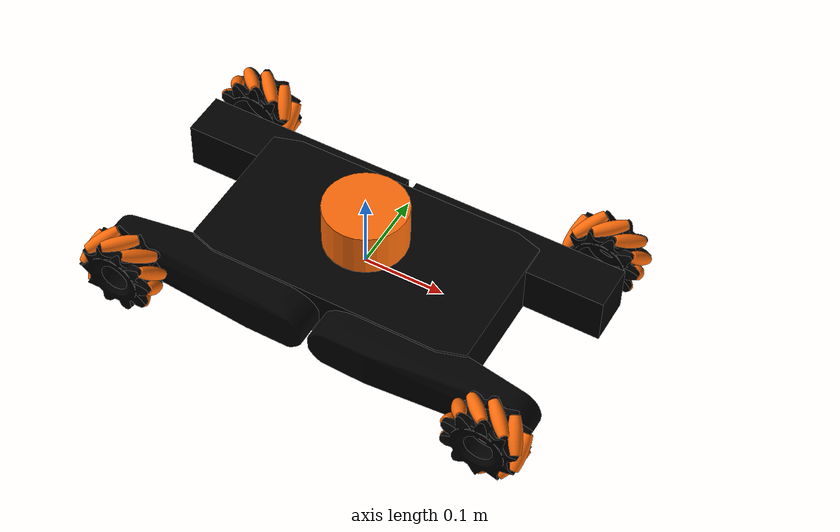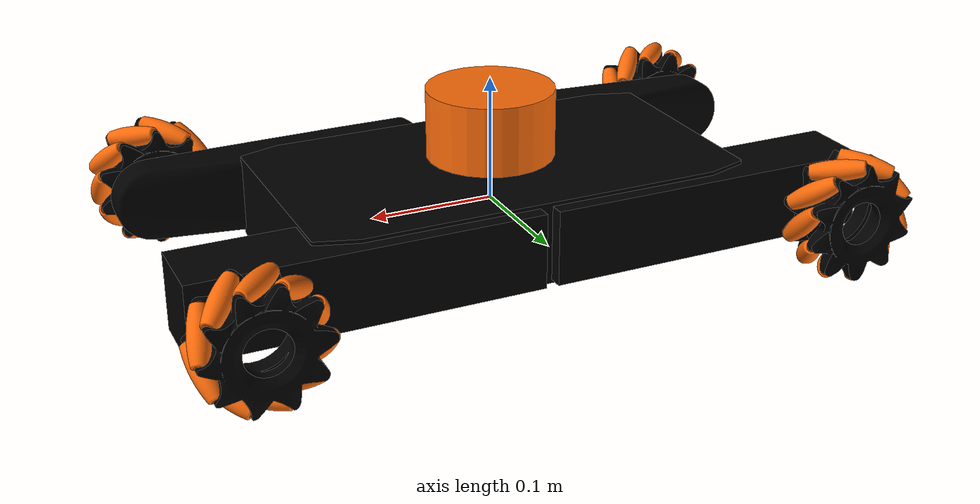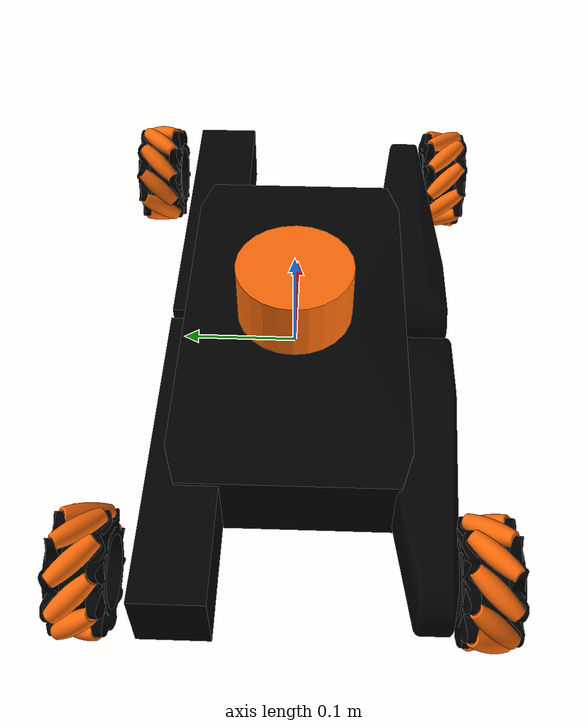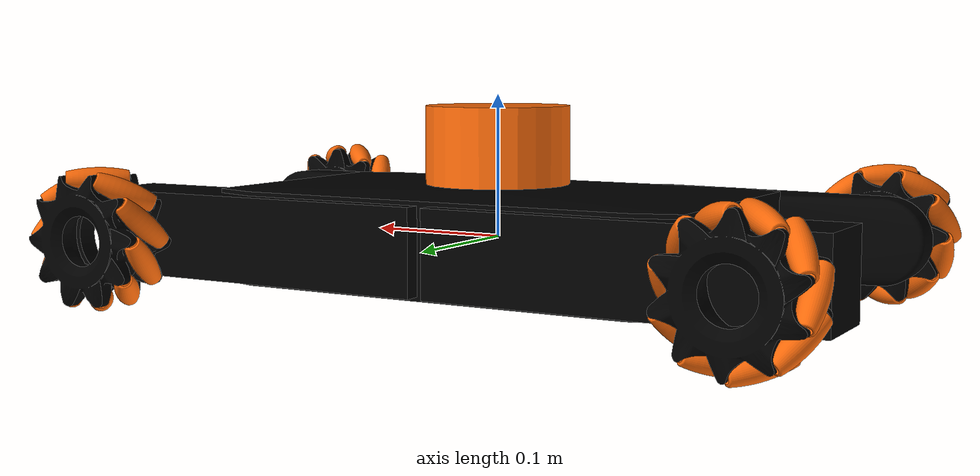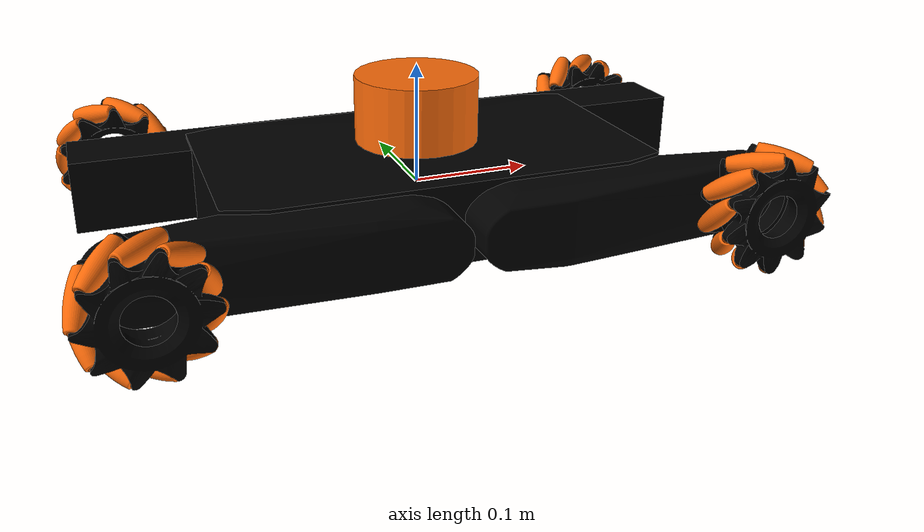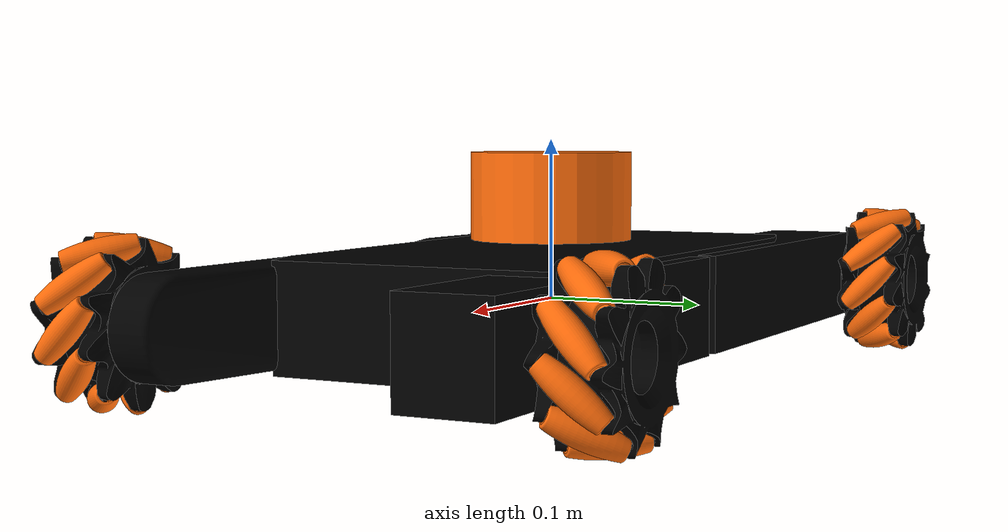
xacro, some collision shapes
<?xml version="1.0"?>
<robot name="mulinex" xmlns:xacro="http://ros.org/wiki/xacro">

    <xacro:include filename="$(find mulinex_description)/urdf/omni_car_module.xacro" />
    <xacro:property name="mulinex_base" value="file://$(find mulinex_description)/meshes//Body.stl" />
    <xacro:include filename="$(find mulinex_description)/urdf/material.xacro" />
    <xacro:include filename="$(find mulinex_description)/urdf/omnicar_ignition.xacro" />
    <xacro:include filename="$(find mulinex_description)/urdf/imu_sensor.xacro" />
    <xacro:include filename="$(find mulinex_description)/urdf/lidar_sensor.xacro" />
    <xacro:include filename="$(find mulinex_description)/urdf/camera_sensor.xacro" />

    <xacro:arg name="use_gazebo" default="true" />
    <xacro:arg name="yaml_file" default=""/>
    <xacro:arg name="lidar_3D" default="true"/>
    <xacro:arg name="omnicar_namespace" default="omnicar"/>

    <xacro:arg name="jnt_prefix" default=""/>

    <xacro:arg name="front_haa" default="0.0" />
    <xacro:arg name="hind_haa" default="0.0" />

    <link name="$(arg jnt_prefix)base_link">
        <visual>
            <material name="black"/>
            <origin xyz="0 0 0" rpy="0 0 0" />
            <geometry>
                <mesh filename="${mulinex_base}" />
            </geometry>
        </visual>
        <collision>
            <origin xyz="0 0 0" rpy="0 0 0" />
            <geometry>
                <box size="0.353 0.090 0.066" />
            </geometry>
        </collision>
        <inertial>
            <mass value="1.3008737" />
            <origin xyz="-1.4565496e-03 -2.5110071e-03 -4.2484136e-03" rpy="0 0 0" />
            <inertia ixx="4.0762590e-03" ixy="-2.5234809e-05" ixz="-3.2587794e-06"
                iyy="9.2413606e-03" iyz="-8.0660183e-06"
                izz="1.2268730e-02" />
        </inertial>

    </link>
    <gazebo>

        <plugin
            filename="ignition-gazebo-odometry-publisher-system"
            name="ignition::gazebo::systems::OdometryPublisher">
            <dimensions>3</dimensions>
            <odom_publish_frequency>100</odom_publish_frequency>
            <odom_frame>$(arg omnicar_namespace)/gt_odom</odom_frame>
            <robot_base_frame>$(arg omnicar_namespace)/base_link</robot_base_frame>
            <odom_topic>$(arg omnicar_namespace)/gt_odom</odom_topic>
            <tf_topic>$(arg omnicar_namespace)/gt_pose_gazebo</tf_topic>
        </plugin>
    </gazebo>
    <xacro:omni_mod
        prefix="LH"
        gazebo="$(arg use_gazebo)"
        jnt_pref="$(arg jnt_prefix)"
        simplify_meshes="true"
        />
    <xacro:omni_mod
        prefix="LF"
        gazebo="$(arg use_gazebo)"
        jnt_pref="$(arg jnt_prefix)"
        simplify_meshes="true"
        />
    <xacro:omni_mod
        prefix="RF"
        gazebo="$(arg use_gazebo)"
        jnt_pref="$(arg jnt_prefix)"
        simplify_meshes="true"
        />
    <xacro:omni_mod
        prefix="RH"
        gazebo="$(arg use_gazebo)"
        jnt_pref="$(arg jnt_prefix)"
        simplify_meshes="true"
    />
    <xacro:imu_sensor namespace="$(arg omnicar_namespace)"/>
    <xacro:lidar_sensor tredi="$(arg lidar_3D)" namespace="$(arg omnicar_namespace)"/>

    <xacro:omnicar_ign_hw
        gazebo="$(arg use_gazebo)"
        yaml="$(arg yaml_file)"
    />

</robot>

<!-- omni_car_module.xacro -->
<robot xmlns:xacro="http://ros.org/wiki/xacro">

    <xacro:include filename="$(find mulinex_description)/urdf/hip_module.xacro" />
    <xacro:include filename="$(find mulinex_description)/urdf/wheel.xacro" />
    <xacro:property name="PI" value="3.141592" />

    <xacro:macro name="omni_mod" params="prefix gazebo jnt_pref simplify_meshes">
        <!-- Module 1 -->
        <xacro:hip
            prefix="${prefix}"
            gazebo="${gazebo}"
            jnt_pref=""
            simplify_meshes="${simplify_meshes}"
        />
        <!-- wheel -->
        <xacro:wheel
            prefix="${prefix}"
            gazebo="${gazebo}"
        />

    </xacro:macro>

</robot>

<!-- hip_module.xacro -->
<robot xmlns:xacro="http://ros.org/wiki/xacro">

    <xacro:property name="base_2_HAA_y" value="${81.0 * 0.001}" />
    <xacro:property name="base_2_HAA_x" value="${45.0 * 0.001}" />
    <xacro:property name="PI" value="3.141592" />

    <!-- MULINEX VISUALIZATION meshes -->

    <xacro:property name="mulinex_module_left_front"
        value="file://$(find mulinex_description)/meshes//Module_left_front.stl" />
    <xacro:property name="mulinex_module_left_hind"
        value="file://$(find mulinex_description)/meshes//Module_left_hind.stl" />
    <xacro:property name="mulinex_module_2_left"
        value="file://$(find mulinex_description)/meshes//Module_2_left.stl" />
    <xacro:property name="mulinex_lower_leg_left"
        value="file://$(find mulinex_description)/meshes//Lower_leg_left.stl" />
    <xacro:property name="mulinex_module_right_front"
        value="file://$(find mulinex_description)/meshes//Module_right_front.stl" />
    <xacro:property name="mulinex_module_right_hind"
        value="file://$(find mulinex_description)/meshes//Module_right_hind.stl" />
    <xacro:property name="mulinex_module_2_right"
        value="file://$(find mulinex_description)/meshes//Module_2_right.stl" />
    <xacro:property name="mulinex_lower_leg_right"
        value="file://$(find mulinex_description)/meshes//Lower_leg_right.stl" />

    <!-- HIP -->
    <xacro:macro name="hip" params="prefix gazebo jnt_pref simplify_meshes">
        <!-- Transformation based on the position of each link -->
        <xacro:if value="${prefix == 'LF'}">
            <xacro:property name="base_to_hip_xyz" value="${base_2_HAA_x} ${base_2_HAA_y} 0" />
        </xacro:if>
        <xacro:if
            value="${prefix == 'LH'}">
            <xacro:property name="base_to_hip_xyz" value="${-base_2_HAA_x} ${base_2_HAA_y} 0" />
        </xacro:if>
        <xacro:if
            value="${prefix == 'RF'}">
            <xacro:property name="base_to_hip_xyz" value="${base_2_HAA_x} ${-base_2_HAA_y} 0" />
        </xacro:if>
        <xacro:if
            value="${prefix == 'RH'}">
            <xacro:property name="base_to_hip_xyz" value="${-base_2_HAA_x} ${-base_2_HAA_y} 0" />
        </xacro:if>

        <!-- Joint to fix the leg to the base -->
        <joint name="${prefix}_HAA" type="fixed">
            <parent link="${jnt_pref}base_link" />
            <child link="${jnt_pref}${prefix}_SHOULDER" />
            <origin xyz="${base_to_hip_xyz}" rpy="0 0 0" />
        </joint>
        <!-- Shoulder link -->
        <link name="${prefix}_SHOULDER">
            <visual>
                <material name="black" />
                <xacro:if value="${prefix == 'LF'}">
                    <origin xyz="0 0 0" rpy="0 0 0" />
                    <geometry>
                        <xacro:if value="${simplify_meshes}">
                            <mesh filename="${mulinex_module_left_front}" />
                        </xacro:if>
                        <xacro:unless value="${simplify_meshes}">
                            <mesh filename="${old_mulinex_module_left_front}" />
                        </xacro:unless>
                    </geometry>
                </xacro:if>
                <xacro:if value="${prefix == 'LH'}">
                    <origin xyz="0 0 0" rpy="0 0 0" />
                    <geometry>
                        <xacro:if value="${simplify_meshes}">
                            <mesh filename="${mulinex_module_left_hind}" />
                        </xacro:if>
                        <xacro:unless value="${simplify_meshes}">
                            <mesh filename="${old_mulinex_module_left_hind}" />
                        </xacro:unless>
                    </geometry>
                </xacro:if>
                <xacro:if value="${prefix == 'RF'}">
                    <origin xyz="0 0 0" rpy="0 0 0" />
                    <geometry>
                        <xacro:if value="${simplify_meshes}">
                            <mesh filename="${mulinex_module_right_front}" />
                        </xacro:if>
                        <xacro:unless value="${simplify_meshes}">
                            <mesh filename="${old_mulinex_module_right_front}" />
                        </xacro:unless>
                    </geometry>
                </xacro:if>
                <xacro:if value="${prefix == 'RH'}">
                    <origin xyz="0 0 0" rpy="0 0 0" />
                    <geometry>
                        <xacro:if value="${simplify_meshes}">
                            <mesh filename="${mulinex_module_right_hind}" />
                        </xacro:if>
                        <xacro:unless value="${simplify_meshes}">
                            <mesh filename="${old_mulinex_module_right_hind}" />
                        </xacro:unless>
                    </geometry>
                </xacro:if>
            </visual>

            <collision>
                <xacro:if value="${prefix == 'LF'}">
                    <origin xyz="0.0945 0 0" rpy="0 0 0" />
                    <geometry>
                        <box size="0.269 0.057 0.060" />
                    </geometry>
                </xacro:if>
                <xacro:if value="${prefix == 'LH'}">
                    <origin xyz="-0.0945 0 0" rpy="0 0 0" />
                    <geometry>
                        <box size="0.269 0.057 0.060" />
                    </geometry>
                </xacro:if>
                <xacro:if value="${prefix == 'RF'}">
                    <origin xyz="0.0945 0 0" rpy="0 0 0" />
                    <geometry>
                        <box size="0.269 0.057 0.060" />
                    </geometry>
                </xacro:if>
                <xacro:if value="${prefix == 'RH'}">
                    <origin xyz="-0.0945 0 0" rpy="0 0 0" />
                    <geometry>
                        <box size="0.269 0.057 0.060" />
                    </geometry>
                </xacro:if>
            </collision>

            <inertial>
                <mass value="0.47669673" />
                <xacro:if value="${prefix == 'LF'}">
                    <origin
                        xyz="7.2487360e-02 3.1582591e-02 -2.4812434e-03"
                        rpy="0 0 0" />
                    <inertia ixx="2.1574269e-04" ixy="-3.3437484e-05"
                        ixz="-2.4284668e-06" iyy="3.0607390e-03"
                        iyz="-2.0388977e-06" izz="3.0504273e-03" />
                </xacro:if>
                <xacro:if value="${prefix == 'LH'}">
                    <origin
                        xyz="-7.2487360e-02 3.1582591e-02 2.4812434e-03"
                        rpy="0 0 0" />
                    <inertia ixx="2.1574269e-04" ixy="3.3437484e-05"
                        ixz="-2.4284668e-06" iyy="3.0607390e-03"
                        iyz="-2.0388977e-06" izz="3.0504273e-03" />
                </xacro:if>
                <xacro:if value="${prefix == 'RF'}">
                    <origin
                        xyz="7.2487360e-02 -3.1582591e-02 2.4812434e-03"
                        rpy="0 0 0" />
                    <inertia ixx="2.1574269e-04" ixy="3.3437484e-05"
                        ixz="2.4284668e-06" iyy="3.0607390e-03"
                        iyz="-2.0388977e-06" izz="3.0504273e-03" />
                </xacro:if>
                <xacro:if value="${prefix == 'RH'}">
                    <origin
                        xyz="-7.2487360e-02 -3.1582591e-02 -2.4812434e-03"
                        rpy="0 0 0" />
                    <inertia ixx="2.1574269e-04" ixy="-3.3437484e-05"
                        ixz="2.4284668e-06" iyy="3.0607390e-03"
                        iyz="-2.0388977e-06" izz="3.0504273e-03" />
                </xacro:if>
            </inertial>
        </link>
        <xacro:if value="${gazebo}">
            <gazebo reference="${prefix}_SHOULDER">
                <collision>
                    <surface>
                        <friction>
                            <ode>
                                <mu>1</mu>
                                <mu2>1</mu2>
                                <slip1>0</slip1>
                                <slip2>0</slip2>
                            </ode>
                        </friction>
                        <contact>
                            <ode>
                                <kp>1000000.0</kp>
                                <kd>100.0</kd>
                                <min_depth>0.001</min_depth>
                            </ode>
                        </contact>
                    </surface>
                </collision>
            </gazebo>
        </xacro:if>
    </xacro:macro>

</robot>

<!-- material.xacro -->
<robot xmlns:xacro="http://www.ros.org/wiki/xacro">

  <material name="black">
    <color rgba="0.0 0.0 0.0 1.0"/>
  </material>

  <material name="blue">
    <color rgba="0.0 0.0 0.8 1.0"/>
  </material>

  <material name="green">
    <color rgba="0.0 0.8 0.0 1.0"/>
  </material>

  <material name="grey">
    <color rgba="0.2 0.2 0.2 1.0"/>
  </material>

  <material name="orange">
    <color rgba="${255/255} ${108/255} ${10/255} 1.0"/>
  </material>

  <material name="brown">
    <color rgba="${222/255} ${207/255} ${195/255} 1.0"/>
  </material>

  <material name="red">
    <color rgba="0.8 0.0 0.0 1.0"/>
  </material>

  <material name="white">
    <color rgba="1.0 1.0 1.0 1.0"/>
  </material>

</robot>

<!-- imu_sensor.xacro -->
<robot xmlns:xacro="http://ros.org/wiki/xacro">

    <xacro:property name="PI" value="3.141592" />
    <xacro:property name="b2i_x" value="0.0" />
    <xacro:property name="b2i_y" value="0.0" />
    <xacro:property name="b2i_z" value="0.0" />
    <xacro:property name="b2i_R" value="0.0" />
    <xacro:property name="b2i_P" value="0.0" />
    <xacro:property name="b2i_Y" value="0.0" />
    <xacro:property name="imu_mass" value="0.01" />
    <xacro:property name="imu_len_x" value="0.01" />
    <xacro:property name="imu_len_y" value="0.01" />
    <xacro:property name="imu_len_z" value="0.01" />

    <xacro:include filename="$(find mulinex_description)/urdf/base_inertia.xacro" />

    <xacro:macro name="imu_sensor" params="namespace">
        <joint name="base2imu" type="fixed">
            <parent link="base_link"/>
            <child link="imu_link"/>
            <origin xyz="${b2i_x} ${b2i_y} ${b2i_z}" rpy="${b2i_R} ${b2i_P} ${b2i_Y}"/>
        </joint>
        <link name="imu_link">
            <visual>
                <geometry>
                    <box size="${imu_len_x} ${imu_len_y} ${imu_len_z}"/>
                </geometry>
                <material name="orange"/>

            </visual>

            <collision>
                <geometry>
                    <box size="${imu_len_x} ${imu_len_y} ${imu_len_z}"/>
                </geometry>
            </collision>

            <xacro:box_inertia m="${imu_mass}" w="${imu_len_x}" d="${imu_len_y}" h="${imu_len_z}"/>

        </link>
        <gazebo reference="imu_link">
            <sensor name="imu_sensor" type="imu">
                    <ignition_frame_id>${namespace}/imu_link</ignition_frame_id>
                    <always_on>1</always_on>
                    <update_rate>100</update_rate>
                    <visualize>true</visualize>
                    <topic>${namespace}/imu</topic>
                    <plugin filename="libignition-gazebo-imu-system.so"
                            name="ignition::gazebo::systems::Imu">
                    </plugin>

                    <imu>
                        <angular_velocity>
                            <x>
                                <noise type="gaussian">
                                <mean>0.0</mean>
                                <stddev>2e-4</stddev>
                                <bias_mean>0.0000075</bias_mean>
                                <bias_stddev>0.0000008</bias_stddev>
                                </noise>
                            </x>
                            <y>
                                <noise type="gaussian">
                                <mean>0.0</mean>
                                <stddev>2e-4</stddev>
                                <bias_mean>0.0000075</bias_mean>
                                <bias_stddev>0.0000008</bias_stddev>
                                </noise>
                            </y>
                            <z>
                                <noise type="gaussian">
                                <mean>0.0</mean>
                                <stddev>2e-4</stddev>
                                <bias_mean>0.0000075</bias_mean>
                                <bias_stddev>0.0000008</bias_stddev>
                                </noise>
                            </z>
                        </angular_velocity>
                        <linear_acceleration>
                            <x>
                                <noise type="gaussian">
                                <mean>0.0</mean>
                                <stddev>1.7e-2</stddev>
                                <bias_mean>0.1</bias_mean>
                                <bias_stddev>0.001</bias_stddev>
                                </noise>
                            </x>
                            <y>
                                <noise type="gaussian">
                                <mean>0.0</mean>
                                <stddev>1.7e-2</stddev>
                                <bias_mean>0.1</bias_mean>
                                <bias_stddev>0.001</bias_stddev>
                                </noise>
                            </y>
                            <z>
                                <noise type="gaussian">
                                <mean>0.0</mean>
                                <stddev>1.7e-2</stddev>
                                <bias_mean>0.1</bias_mean>
                                <bias_stddev>0.001</bias_stddev>
                                </noise>
                            </z>
                        </linear_acceleration>
                    </imu>
                </sensor>
        </gazebo>
    </xacro:macro>

</robot>

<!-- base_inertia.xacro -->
<robot xmlns:xacro="http://ros.org/wiki/xacro">

    <xacro:macro name="box_inertia" params="m w h d">
    <inertial>
      <origin xyz="0 0 0" rpy="${pi/2} 0 ${pi/2}"/>
      <mass value="${m}"/>
      <inertia ixx="${(m/12) * (h*h + d*d)}" ixy="0.0" ixz="0.0" iyy="${(m/12) * (w*w + d*d)}" iyz="0.0" izz="${(m/12) * (w*w + h*h)}"/>
    </inertial>
  </xacro:macro>

  <xacro:macro name="cylinder_inertia" params="m r h dir">
    <inertial>
      <xacro:if value="${dir == 'z'}">
        <origin xyz="0 0 0" rpy="0 0 0" />
      </xacro:if>
      <xacro:if value="${dir == 'x'}">
        <origin xyz="0 0 0" rpy="0 ${pi/2} 0" />
      </xacro:if>
      <xacro:if value="${dir == 'y'}">
        <origin xyz="0 0 0" rpy="${pi/2} 0 0" />
      </xacro:if>
      <mass value="${m}"/>
      <inertia ixx="${(m/12) * (3*r*r + h*h)}" ixy = "0" ixz = "0" iyy="${(m/12) * (3*r*r + h*h)}" iyz = "0" izz="${(m/2) * (r*r)}"/>
    </inertial>
  </xacro:macro>

</robot>

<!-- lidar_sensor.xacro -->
<robot xmlns:xacro="http://ros.org/wiki/xacro">

    <xacro:property name="PI" value="3.141592" />

    <xacro:property name="b2l_x" value="0.0" />
    <xacro:property name="b2l_y" value="0.0" />
    <xacro:property name="b2l_z" value="0.065" />
    <xacro:property name="b2l_R" value="0.0" />
    <xacro:property name="b2l_P" value="0.0" />
    <xacro:property name="b2l_Y" value="0.0" />
    <xacro:property name="lidar_mass" value="0.125" />
    <xacro:property name="lidar_len_rad" value="0.0508" />
    <xacro:property name="lidar_len_h" value="0.055" />
    <xacro:include filename="$(find mulinex_description)/urdf/base_inertia.xacro" />

    <xacro:macro name="lidar_sensor" params="tredi namespace">
        <joint name="base2lidar" type="fixed">
            <parent link="base_link"/>
            <child link="lidar_link"/>
            <origin xyz="${b2l_x} ${b2l_y} ${b2l_z}" rpy="${b2l_R} ${b2l_P} ${b2l_Y}"/>
        </joint>
        <link name="lidar_link">
            <collision>
                <origin xyz="0 0 0" rpy="0 0 0"/>
                <geometry>
                    <cylinder radius="${lidar_len_rad}" length="${lidar_len_h}"/>
                </geometry>
            </collision>

            <visual>
                <origin xyz="0 0 0" rpy="0 0 0"/>
                <geometry>
                    <cylinder radius="${lidar_len_rad}" length="${lidar_len_h}"/>
                </geometry>
                <material name="orange"/>
            </visual>

            <xacro:cylinder_inertia m="${lidar_mass}" r="${lidar_len_rad}" h="${lidar_len_h}" dir="z"/>

        </link>
        <gazebo reference="lidar_link">
            <sensor name="RGLsensor" type="custom">
                <plugin filename="RGLServerPluginInstance" name="rgl::RGLServerPluginInstance">
                    <range>
                    <min>0</min>
                    <max>100</max>
                    </range>
                    <update_rate>10</update_rate>
                    <update_on_paused_sim>false</update_on_paused_sim>
                    <topic>${namespace}/rgl_lidar</topic>
                    <frame>${namespace}/lidar_link</frame>
                    <pattern_preset>Puck</pattern_preset>
                </plugin>
            </sensor>
        </gazebo>

    </xacro:macro>

</robot>
